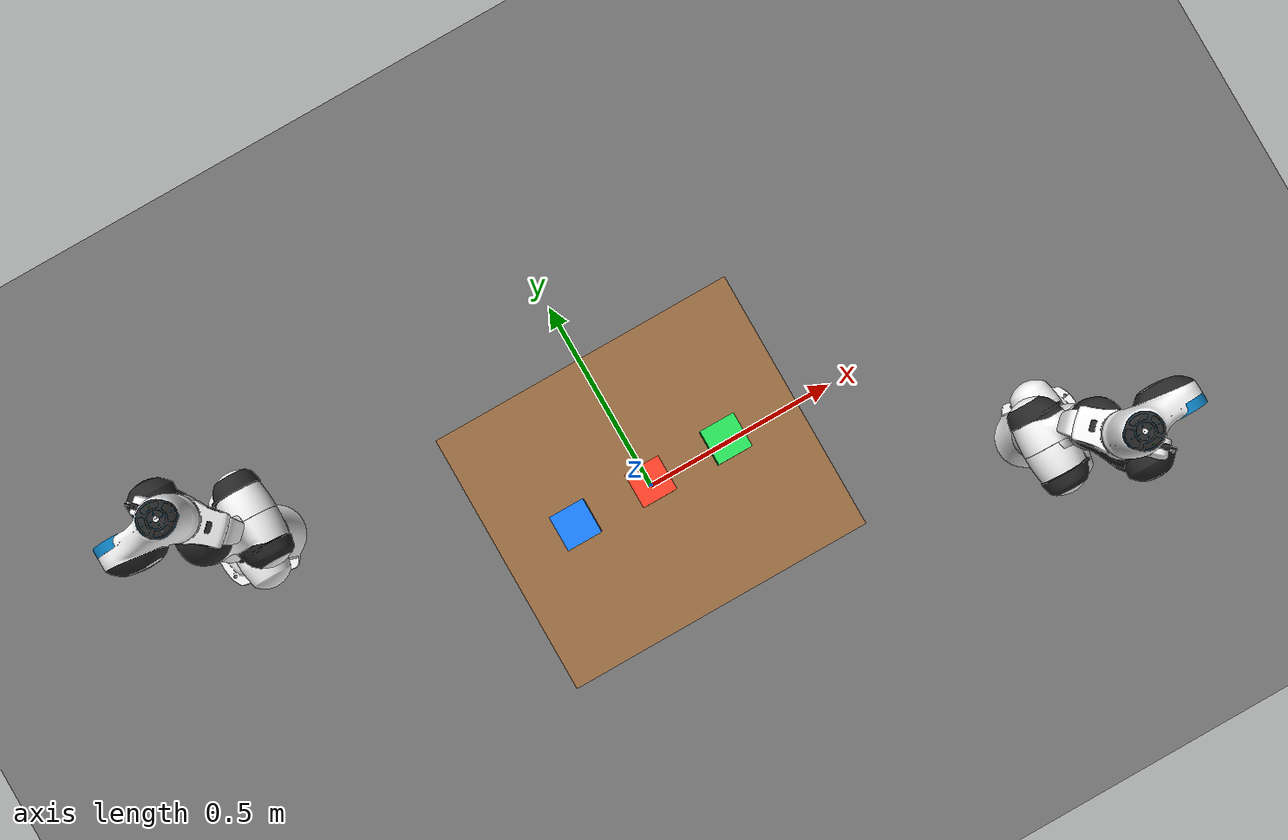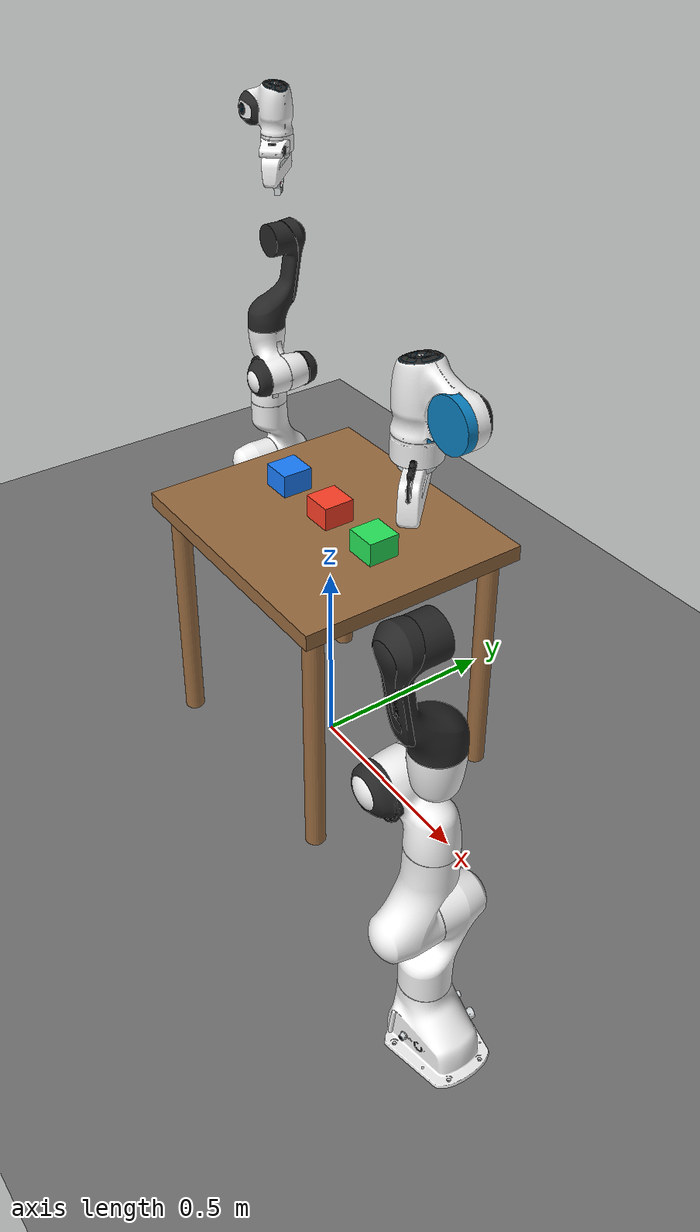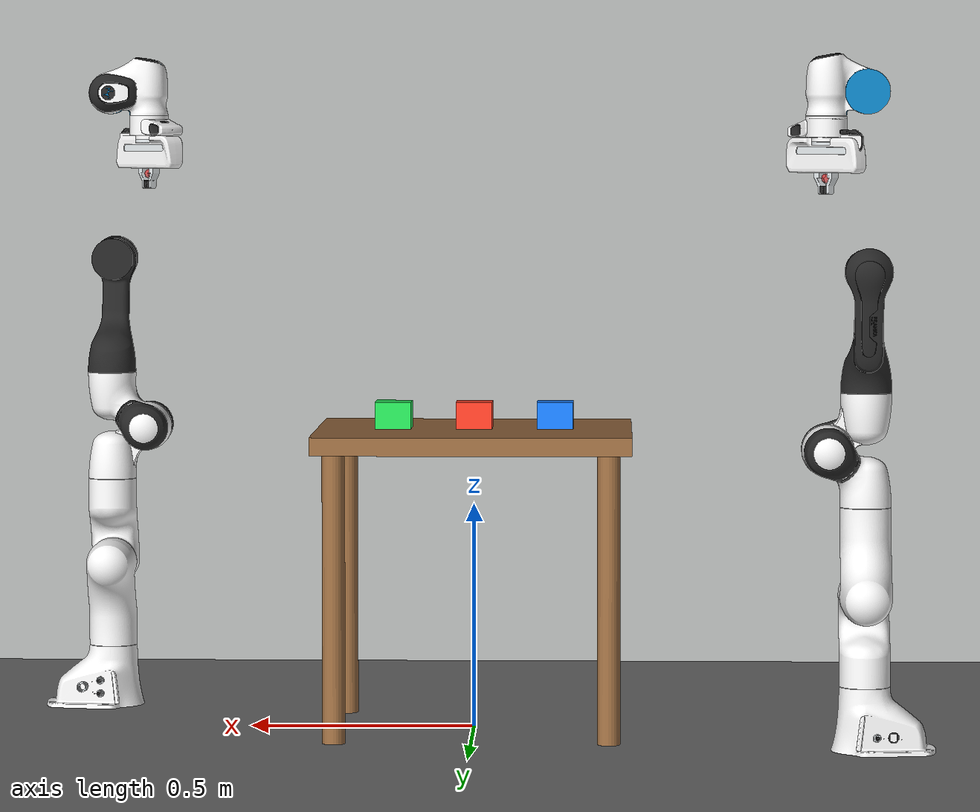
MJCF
<mujoco model="dual arm v5">
  <compiler angle="radian" meshdir="../../vendor/mujoco_menagerie/franka_emika_panda/assets" autolimits="true"/>
  <option timestep="0.002" integrator="implicitfast">
    <flag eulerdamp="disable"/>
  </option>
  <visual>
    <global offwidth="1920" offheight="1080"/>
    <headlight diffuse="0.5 0.5 0.5" ambient="0.3 0.3 0.3"/>
  </visual>
  <default>
    <default class="panda">
      <material specular="0.5" shininess="0.25"/>
      <joint armature="0.1" damping="1" axis="0 0 1" range="-2.8973 2.8973"/>
      <general dyntype="none" biastype="affine" ctrlrange="-2.8973 2.8973" forcerange="-87 87"/>
      <default class="finger">
        <joint axis="0 1 0" type="slide" range="0 0.04"/>
      </default>
      <default class="visual">
        <geom type="mesh" contype="0" conaffinity="0" group="2"/>
      </default>
      <default class="collision">
        <geom type="mesh" group="3"/>
      </default>
    </default>
  </default>
  <asset>
    <texture type="skybox" builtin="gradient" rgb1="0.12 0.2 0.35" rgb2="0.02 0.02 0.06" width="512" height="3072"/>
    <texture type="2d" name="grid" builtin="checker" rgb1=".55 .55 .55" rgb2=".35 .35 .35" width="512" height="512"/>
    <material name="grid_mat" texture="grid" texrepeat="12 12" reflectance="0.12"/>
    <material class="panda" name="white" rgba="0.95 0.95 0.95 1"/>
    <material class="panda" name="off_white" rgba="0.85 0.87 0.88 1"/>
    <material class="panda" name="black" rgba="0.15 0.15 0.15 1"/>
    <material class="panda" name="green" rgba="0 0.8 0 1"/>
    <material class="panda" name="light_blue" rgba="0.04 0.5 0.75 1"/>
    <!-- 太空舱模块 - 更大更醒目 -->
    <material name="mod_blue" rgba="0.1 0.5 1.0 1" specular="0.6" shininess="0.5"/>
    <material name="mod_red" rgba="1.0 0.25 0.15 1" specular="0.6" shininess="0.5"/>
    <material name="mod_green" rgba="0.15 0.9 0.35 1" specular="0.6" shininess="0.5"/>
    <material name="table_mat" rgba="0.6 0.42 0.25 1" specular="0.5" shininess="0.3" reflectance="0.1"/>
    <mesh name="link0_c" file="link0.stl"/><mesh name="link1_c" file="link1.stl"/>
    <mesh name="link2_c" file="link2.stl"/><mesh name="link3_c" file="link3.stl"/>
    <mesh name="link4_c" file="link4.stl"/>
    <mesh name="link5_c0" file="link5_collision_0.obj"/>
    <mesh name="link5_c1" file="link5_collision_1.obj"/>
    <mesh name="link5_c2" file="link5_collision_2.obj"/>
    <mesh name="link6_c" file="link6.stl"/><mesh name="link7_c" file="link7.stl"/>
    <mesh name="hand_c" file="hand.stl"/>
    <mesh file="link0_0.obj"/><mesh file="link0_1.obj"/><mesh file="link0_2.obj"/>
    <mesh file="link0_3.obj"/><mesh file="link0_4.obj"/><mesh file="link0_5.obj"/>
    <mesh file="link0_7.obj"/><mesh file="link0_8.obj"/><mesh file="link0_9.obj"/>
    <mesh file="link0_10.obj"/><mesh file="link0_11.obj"/>
    <mesh file="link1.obj"/><mesh file="link2.obj"/>
    <mesh file="link3_0.obj"/><mesh file="link3_1.obj"/><mesh file="link3_2.obj"/><mesh file="link3_3.obj"/>
    <mesh file="link4_0.obj"/><mesh file="link4_1.obj"/><mesh file="link4_2.obj"/><mesh file="link4_3.obj"/>
    <mesh file="link5_0.obj"/><mesh file="link5_1.obj"/><mesh file="link5_2.obj"/>
    <mesh file="link6_0.obj"/><mesh file="link6_1.obj"/><mesh file="link6_2.obj"/>
    <mesh file="link6_3.obj"/><mesh file="link6_4.obj"/><mesh file="link6_5.obj"/>
    <mesh file="link6_6.obj"/><mesh file="link6_7.obj"/><mesh file="link6_8.obj"/>
    <mesh file="link6_9.obj"/><mesh file="link6_10.obj"/><mesh file="link6_11.obj"/>
    <mesh file="link6_12.obj"/><mesh file="link6_13.obj"/><mesh file="link6_14.obj"/>
    <mesh file="link6_15.obj"/><mesh file="link6_16.obj"/>
    <mesh file="link7_0.obj"/><mesh file="link7_1.obj"/><mesh file="link7_2.obj"/>
    <mesh file="link7_3.obj"/><mesh file="link7_4.obj"/><mesh file="link7_5.obj"/>
    <mesh file="link7_6.obj"/><mesh file="link7_7.obj"/>
    <mesh file="hand_0.obj"/><mesh file="hand_1.obj"/><mesh file="hand_2.obj"/>
    <mesh file="hand_3.obj"/><mesh file="hand_4.obj"/>
    <mesh file="finger_0.obj"/><mesh file="finger_1.obj"/>
  </asset>

  <worldbody>
    <light pos="0.5 0.8 3" dir="-0.2 -0.3 -1" diffuse=".8 .8 .8" specular=".3 .3 .3"/>
    <light pos="-0.8 0.5 2" dir="0.3 -0.2 -1" diffuse=".4 .4 .4"/>
    <light pos="0 -1.5 2" dir="0 0.8 -1" diffuse=".3 .3 .3"/>
    <geom name="floor" size="4 4 0.1" type="plane" material="grid_mat"/>
    <geom name="table_top" type="box" pos="0 0 0.65" size="0.35 0.3 0.02"
          material="table_mat" contype="1" conaffinity="1"/>
    <geom name="table_leg1" type="cylinder" pos="-0.3 -0.25 0.32" size="0.025 0.33"
          material="table_mat" contype="1" conaffinity="1"/>
    <geom name="table_leg2" type="cylinder" pos="0.3 -0.25 0.32" size="0.025 0.33"
          material="table_mat" contype="1" conaffinity="1"/>
    <geom name="table_leg3" type="cylinder" pos="-0.3 0.25 0.32" size="0.025 0.33"
          material="table_mat" contype="1" conaffinity="1"/>
    <geom name="table_leg4" type="cylinder" pos="0.3 0.25 0.32" size="0.025 0.33"
          material="table_mat" contype="1" conaffinity="1"/>

    <!-- 太空舱模块 - 中间位置 z=0.7 -->
    <body name="module_a" pos="-0.18 0 0.7">
      <freejoint name="module_a_free"/>
      <geom type="box" size="0.04 0.04 0.03" material="mod_blue"/>
    </body>
    <body name="module_b" pos="0 0 0.7">
      <freejoint name="module_b_free"/>
      <geom type="box" size="0.04 0.04 0.03" material="mod_red"/>
    </body>
    <body name="module_c" pos="0.18 0 0.7">
      <freejoint name="module_c_free"/>
      <geom type="box" size="0.04 0.04 0.03" material="mod_green"/>
    </body>

    <!-- Left Arm - 距离拉开 x=-0.5 -->
    <body name="base_L" pos="-0.85 0.35 0">
      <body name="link0_L" childclass="panda">
        <inertial mass="0.629769" pos="-0.041018 -0.00014 0.049974" fullinertia="0.00315 0.00388 0.004285 8.2904e-7 0.00015 8.2299e-6"/>
        <geom mesh="link0_0" material="off_white" class="visual"/><geom mesh="link0_1" material="black" class="visual"/>
        <geom mesh="link0_2" material="off_white" class="visual"/><geom mesh="link0_3" material="black" class="visual"/>
        <geom mesh="link0_4" material="off_white" class="visual"/><geom mesh="link0_5" material="black" class="visual"/>
        <geom mesh="link0_7" material="white" class="visual"/><geom mesh="link0_8" material="white" class="visual"/>
        <geom mesh="link0_9" material="black" class="visual"/><geom mesh="link0_10" material="off_white" class="visual"/>
        <geom mesh="link0_11" material="white" class="visual"/><geom mesh="link0_c" class="collision"/>
        <body name="link1_L" pos="0 0 0.333">
          <inertial mass="4.970684" pos="0.003875 0.002081 -0.04762" fullinertia="0.70337 0.70661 0.0091170 -0.00013900 0.0067720 0.019169"/>
          <joint name="joint1_L"/>
          <geom material="white" mesh="link1" class="visual"/><geom mesh="link1_c" class="collision"/>
          <body name="link2_L" quat="1 -1 0 0">
            <inertial mass="0.646926" pos="-0.003141 -0.02872 0.003495" fullinertia="0.0079620 2.8110e-2 2.5995e-2 -3.925e-3 1.0254e-2 7.04e-4"/>
            <joint name="joint2_L" range="-1.7628 1.7628"/>
            <geom material="white" mesh="link2" class="visual"/><geom mesh="link2_c" class="collision"/>
            <body name="link3_L" pos="0 -0.316 0" quat="1 1 0 0">
              <joint name="joint3_L"/>
              <inertial mass="3.228604" pos="2.7518e-2 3.9252e-2 -6.6502e-2" fullinertia="3.7242e-2 3.6155e-2 1.083e-2 -4.761e-3 -1.1396e-2 -1.2805e-2"/>
              <geom mesh="link3_0" material="white" class="visual"/><geom mesh="link3_1" material="white" class="visual"/>
              <geom mesh="link3_2" material="white" class="visual"/><geom mesh="link3_3" material="black" class="visual"/>
              <geom mesh="link3_c" class="collision"/>
              <body name="link4_L" pos="0.0825 0 0" quat="1 1 0 0">
                <inertial mass="3.587895" pos="-5.317e-2 1.04419e-1 2.7454e-2" fullinertia="2.5853e-2 1.9552e-2 2.8323e-2 7.796e-3 -1.332e-3 8.641e-3"/>
                <joint name="joint4_L" range="-3.0718 -0.0698"/>
                <geom mesh="link4_0" material="white" class="visual"/><geom mesh="link4_1" material="white" class="visual"/>
                <geom mesh="link4_2" material="black" class="visual"/><geom mesh="link4_3" material="white" class="visual"/>
                <geom mesh="link4_c" class="collision"/>
                <body name="link5_L" pos="-0.0825 0.384 0" quat="1 -1 0 0">
                  <inertial mass="1.225946" pos="-1.1953e-2 4.1065e-2 -3.8437e-2" fullinertia="3.5549e-2 2.9474e-2 8.627e-3 -2.117e-3 -4.037e-3 2.29e-4"/>
                  <joint name="joint5_L"/>
                  <geom mesh="link5_0" material="black" class="visual"/><geom mesh="link5_1" material="black" class="visual"/>
                  <geom mesh="link5_2" material="black" class="visual"/>
                  <geom mesh="link5_c0" class="collision"/><geom mesh="link5_c1" class="collision"/><geom mesh="link5_c2" class="collision"/>
                  <body name="link6_L" pos="0 0 0.384" quat="1 1 0 0">
                    <inertial mass="1.66656" pos="-1.1953e-2 4.1065e-2 -3.8437e-2" fullinertia="3.5549e-2 2.9474e-2 8.627e-3 -2.117e-3 -4.037e-3 2.29e-4"/>
                    <joint name="joint6_L"/>
                    <geom mesh="link6_0" material="light_blue" class="visual"/><geom mesh="link6_1" material="light_blue" class="visual"/>
                    <geom mesh="link6_2" material="light_blue" class="visual"/><geom mesh="link6_3" material="light_blue" class="visual"/>
                    <geom mesh="link6_4" material="light_blue" class="visual"/><geom mesh="link6_5" material="light_blue" class="visual"/>
                    <geom mesh="link6_6" material="light_blue" class="visual"/><geom mesh="link6_7" material="light_blue" class="visual"/>
                    <geom mesh="link6_8" material="light_blue" class="visual"/><geom mesh="link6_9" material="black" class="visual"/>
                    <geom mesh="link6_10" material="black" class="visual"/><geom mesh="link6_11" material="white" class="visual"/>
                    <geom mesh="link6_12" material="green" class="visual"/><geom mesh="link6_13" material="white" class="visual"/>
                    <geom mesh="link6_14" material="black" class="visual"/><geom mesh="link6_15" material="black" class="visual"/>
                    <geom mesh="link6_16" material="white" class="visual"/><geom mesh="link6_c" class="collision"/>
                    <body name="link7_L" pos="0.088 0 0" quat="1 1 0 0">
                      <inertial mass="7.35522e-01" pos="1.0517e-2 -4.252e-3 6.1597e-2" fullinertia="1.2516e-2 1.0027e-2 4.815e-3 -4.28e-4 -1.196e-3 -7.41e-4"/>
                      <joint name="joint7_L"/>
                      <geom mesh="link7_0" material="white" class="visual"/><geom mesh="link7_1" material="black" class="visual"/>
                      <geom mesh="link7_2" material="black" class="visual"/><geom mesh="link7_3" material="black" class="visual"/>
                      <geom mesh="link7_4" material="black" class="visual"/><geom mesh="link7_5" material="black" class="visual"/>
                      <geom mesh="link7_6" material="black" class="visual"/><geom mesh="link7_7" material="white" class="visual"/>
                      <geom mesh="link7_c" class="collision"/>
                      <body name="hand_L" pos="0 0 0.107" quat="0.9238795 0 0 -0.3826834">
                        <inertial mass="0.73" pos="-0.01 0 0.03" diaginertia="0.001 0.0025 0.0017"/>
                        <geom mesh="hand_0" material="off_white" class="visual"/><geom mesh="hand_1" material="black" class="visual"/>
                        <geom mesh="hand_2" material="black" class="visual"/><geom mesh="hand_3" material="white" class="visual"/>
                        <geom mesh="hand_4" material="off_white" class="visual"/><geom mesh="hand_c" class="collision"/>
                        <body name="left_finger_L" pos="0 0 0.0584">
                          <inertial mass="0.015" pos="0 0 0" diaginertia="2.375e-6 2.375e-6 7.5e-7"/>
                          <joint name="finger_joint1_L" class="finger"/>
                          <site name="touch_site_L1" pos="0 0 0.02" size="0.01" rgba="1 0 0 0.5"/>
                          <geom mesh="finger_0" material="off_white" class="visual"/><geom mesh="finger_1" material="black" class="visual"/>
                          <geom mesh="finger_0" class="collision"/>
                        </body>
                        <body name="right_finger_L" pos="0 0 0.0584" quat="0 0 0 1">
                          <inertial mass="0.015" pos="0 0 0" diaginertia="2.375e-6 2.375e-6 7.5e-7"/>
                          <joint name="finger_joint2_L" class="finger"/>
                          <site name="touch_site_L2" pos="0 0 0.02" size="0.01" rgba="1 0 0 0.5"/>
                          <geom mesh="finger_0" material="off_white" class="visual"/><geom mesh="finger_1" material="black" class="visual"/>
                          <geom mesh="finger_0" class="collision"/>
                        </body>
                      </body>
                    </body>
                  </body>
                </body>
              </body>
            </body>
          </body>
        </body>
      </body>
    </body>

    <!-- Right Arm - x=0.5 对称 -->
    <body name="base_R" pos="0.85 -0.35 0" euler="0 0 3.14159">
      <body name="link0_R" childclass="panda">
        <inertial mass="0.629769" pos="-0.041018 -0.00014 0.049974" fullinertia="0.00315 0.00388 0.004285 8.2904e-7 0.00015 8.2299e-6"/>
        <geom mesh="link0_0" material="off_white" class="visual"/><geom mesh="link0_1" material="black" class="visual"/>
        <geom mesh="link0_2" material="off_white" class="visual"/><geom mesh="link0_3" material="black" class="visual"/>
        <geom mesh="link0_4" material="off_white" class="visual"/><geom mesh="link0_5" material="black" class="visual"/>
        <geom mesh="link0_7" material="white" class="visual"/><geom mesh="link0_8" material="white" class="visual"/>
        <geom mesh="link0_9" material="black" class="visual"/><geom mesh="link0_10" material="off_white" class="visual"/>
        <geom mesh="link0_11" material="white" class="visual"/><geom mesh="link0_c" class="collision"/>
        <body name="link1_R" pos="0 0 0.333">
          <inertial mass="4.970684" pos="0.003875 0.002081 -0.04762" fullinertia="0.70337 0.70661 0.0091170 -0.00013900 0.0067720 0.019169"/>
          <joint name="joint1_R"/>
          <geom material="white" mesh="link1" class="visual"/><geom mesh="link1_c" class="collision"/>
          <body name="link2_R" quat="1 -1 0 0">
            <inertial mass="0.646926" pos="-0.003141 -0.02872 0.003495" fullinertia="0.0079620 2.8110e-2 2.5995e-2 -3.925e-3 1.0254e-2 7.04e-4"/>
            <joint name="joint2_R" range="-1.7628 1.7628"/>
            <geom material="white" mesh="link2" class="visual"/><geom mesh="link2_c" class="collision"/>
            <body name="link3_R" pos="0 -0.316 0" quat="1 1 0 0">
              <joint name="joint3_R"/>
              <inertial mass="3.228604" pos="2.7518e-2 3.9252e-2 -6.6502e-2" fullinertia="3.7242e-2 3.6155e-2 1.083e-2 -4.761e-3 -1.1396e-2 -1.2805e-2"/>
              <geom mesh="link3_0" material="white" class="visual"/><geom mesh="link3_1" material="white" class="visual"/>
              <geom mesh="link3_2" material="white" class="visual"/><geom mesh="link3_3" material="black" class="visual"/>
              <geom mesh="link3_c" class="collision"/>
              <body name="link4_R" pos="0.0825 0 0" quat="1 1 0 0">
                <inertial mass="3.587895" pos="-5.317e-2 1.04419e-1 2.7454e-2" fullinertia="2.5853e-2 1.9552e-2 2.8323e-2 7.796e-3 -1.332e-3 8.641e-3"/>
                <joint name="joint4_R" range="-3.0718 -0.0698"/>
                <geom mesh="link4_0" material="white" class="visual"/><geom mesh="link4_1" material="white" class="visual"/>
                <geom mesh="link4_2" material="black" class="visual"/><geom mesh="link4_3" material="white" class="visual"/>
                <geom mesh="link4_c" class="collision"/>
                <body name="link5_R" pos="-0.0825 0.384 0" quat="1 -1 0 0">
                  <inertial mass="1.225946" pos="-1.1953e-2 4.1065e-2 -3.8437e-2" fullinertia="3.5549e-2 2.9474e-2 8.627e-3 -2.117e-3 -4.037e-3 2.29e-4"/>
                  <joint name="joint5_R"/>
                  <geom mesh="link5_0" material="black" class="visual"/><geom mesh="link5_1" material="black" class="visual"/>
                  <geom mesh="link5_2" material="black" class="visual"/>
                  <geom mesh="link5_c0" class="collision"/><geom mesh="link5_c1" class="collision"/><geom mesh="link5_c2" class="collision"/>
                  <body name="link6_R" pos="0 0 0.384" quat="1 1 0 0">
                    <inertial mass="1.66656" pos="-1.1953e-2 4.1065e-2 -3.8437e-2" fullinertia="3.5549e-2 2.9474e-2 8.627e-3 -2.117e-3 -4.037e-3 2.29e-4"/>
                    <joint name="joint6_R"/>
                    <geom mesh="link6_0" material="light_blue" class="visual"/><geom mesh="link6_1" material="light_blue" class="visual"/>
                    <geom mesh="link6_2" material="light_blue" class="visual"/><geom mesh="link6_3" material="light_blue" class="visual"/>
                    <geom mesh="link6_4" material="light_blue" class="visual"/><geom mesh="link6_5" material="light_blue" class="visual"/>
                    <geom mesh="link6_6" material="light_blue" class="visual"/><geom mesh="link6_7" material="light_blue" class="visual"/>
                    <geom mesh="link6_8" material="light_blue" class="visual"/><geom mesh="link6_9" material="black" class="visual"/>
                    <geom mesh="link6_10" material="black" class="visual"/><geom mesh="link6_11" material="white" class="visual"/>
                    <geom mesh="link6_12" material="green" class="visual"/><geom mesh="link6_13" material="white" class="visual"/>
                    <geom mesh="link6_14" material="black" class="visual"/><geom mesh="link6_15" material="black" class="visual"/>
                    <geom mesh="link6_16" material="white" class="visual"/><geom mesh="link6_c" class="collision"/>
                    <body name="link7_R" pos="0.088 0 0" quat="1 1 0 0">
                      <inertial mass="7.35522e-01" pos="1.0517e-2 -4.252e-3 6.1597e-2" fullinertia="1.2516e-2 1.0027e-2 4.815e-3 -4.28e-4 -1.196e-3 -7.41e-4"/>
                      <joint name="joint7_R"/>
                      <geom mesh="link7_0" material="white" class="visual"/><geom mesh="link7_1" material="black" class="visual"/>
                      <geom mesh="link7_2" material="black" class="visual"/><geom mesh="link7_3" material="black" class="visual"/>
                      <geom mesh="link7_4" material="black" class="visual"/><geom mesh="link7_5" material="black" class="visual"/>
                      <geom mesh="link7_6" material="black" class="visual"/><geom mesh="link7_7" material="white" class="visual"/>
                      <geom mesh="link7_c" class="collision"/>
                      <body name="hand_R" pos="0 0 0.107" quat="0.9238795 0 0 -0.3826834">
                        <inertial mass="0.73" pos="-0.01 0 0.03" diaginertia="0.001 0.0025 0.0017"/>
                        <geom mesh="hand_0" material="off_white" class="visual"/><geom mesh="hand_1" material="black" class="visual"/>
                        <geom mesh="hand_2" material="black" class="visual"/><geom mesh="hand_3" material="white" class="visual"/>
                        <geom mesh="hand_4" material="off_white" class="visual"/><geom mesh="hand_c" class="collision"/>
                        <body name="left_finger_R" pos="0 0 0.0584">
                          <inertial mass="0.015" pos="0 0 0" diaginertia="2.375e-6 2.375e-6 7.5e-7"/>
                          <joint name="finger_joint1_R" class="finger"/>
                          <site name="touch_site_R1" pos="0 0 0.02" size="0.01" rgba="1 0 0 0.5"/>
                          <geom mesh="finger_0" material="off_white" class="visual"/><geom mesh="finger_1" material="black" class="visual"/>
                          <geom mesh="finger_0" class="collision"/>
                        </body>
                        <body name="right_finger_R" pos="0 0 0.0584" quat="0 0 0 1">
                          <inertial mass="0.015" pos="0 0 0" diaginertia="2.375e-6 2.375e-6 7.5e-7"/>
                          <joint name="finger_joint2_R" class="finger"/>
                          <site name="touch_site_R2" pos="0 0 0.02" size="0.01" rgba="1 0 0 0.5"/>
                          <geom mesh="finger_0" material="off_white" class="visual"/><geom mesh="finger_1" material="black" class="visual"/>
                          <geom mesh="finger_0" class="collision"/>
                        </body>
                      </body>
                    </body>
                  </body>
                </body>
              </body>
            </body>
          </body>
        </body>
      </body>
    </body>

    <!-- 相机：更远更广，确保都看得到 -->
    <camera name="cam_main" pos="0 -2.0 1.3" xyaxes="1 0 0 0 0.55 0.84"/>
    <camera name="cam_top" pos="0 0 3.0" xyaxes="1 0 0 0 1 0"/>
    <camera name="cam_side" pos="0 -2.5 1.5" xyaxes="1 0 0 0 0.5 0.87"/>
    <camera name="cam_close_L" pos="-0.8 -1.2 1.0" xyaxes="0.8 0.6 0 0 0 1"/>
    <camera name="cam_close_R" pos="0.8 -1.2 1.0" xyaxes="-0.8 0.6 0 0 0 1"/>
  </worldbody>

  <tendon>
    <fixed name="split_L"><joint joint="finger_joint1_L" coef="0.5"/><joint joint="finger_joint2_L" coef="0.5"/></fixed>
    <fixed name="split_R"><joint joint="finger_joint1_R" coef="0.5"/><joint joint="finger_joint2_R" coef="0.5"/></fixed>
  </tendon>
  <equality>
    <joint joint1="finger_joint1_L" joint2="finger_joint2_L" solimp="0.95 0.99 0.001" solref="0.005 1"/>
    <joint joint1="finger_joint1_R" joint2="finger_joint2_R" solimp="0.95 0.99 0.001" solref="0.005 1"/>
  </equality>
  <actuator>
    <general class="panda" name="a1L" joint="joint1_L" gainprm="4500" biasprm="0 -4500 -450"/>
    <general class="panda" name="a2L" joint="joint2_L" gainprm="4500" biasprm="0 -4500 -450" ctrlrange="-1.7628 1.7628"/>
    <general class="panda" name="a3L" joint="joint3_L" gainprm="3500" biasprm="0 -3500 -350"/>
    <general class="panda" name="a4L" joint="joint4_L" gainprm="3500" biasprm="0 -3500 -350" ctrlrange="-3.0718 -0.0698"/>
    <general class="panda" name="a5L" joint="joint5_L" gainprm="2000" biasprm="0 -2000 -200" forcerange="-12 12"/>
    <general class="panda" name="a6L" joint="joint6_L" gainprm="2000" biasprm="0 -2000 -200" forcerange="-12 12" ctrlrange="-0.0175 3.7525"/>
    <general class="panda" name="a7L" joint="joint7_L" gainprm="2000" biasprm="0 -2000 -200" forcerange="-12 12"/>
    <general class="panda" name="a8L" tendon="split_L" forcerange="-100 100" ctrlrange="0 255" gainprm="0.01568627451 0 0" biasprm="0 -100 -10"/>
    <general class="panda" name="a1R" joint="joint1_R" gainprm="4500" biasprm="0 -4500 -450"/>
    <general class="panda" name="a2R" joint="joint2_R" gainprm="4500" biasprm="0 -4500 -450" ctrlrange="-1.7628 1.7628"/>
    <general class="panda" name="a3R" joint="joint3_R" gainprm="3500" biasprm="0 -3500 -350"/>
    <general class="panda" name="a4R" joint="joint4_R" gainprm="3500" biasprm="0 -3500 -350" ctrlrange="-3.0718 -0.0698"/>
    <general class="panda" name="a5R" joint="joint5_R" gainprm="2000" biasprm="0 -2000 -200" forcerange="-12 12"/>
    <general class="panda" name="a6R" joint="joint6_R" gainprm="2000" biasprm="0 -2000 -200" forcerange="-12 12" ctrlrange="-0.0175 3.7525"/>
    <general class="panda" name="a7R" joint="joint7_R" gainprm="2000" biasprm="0 -2000 -200" forcerange="-12 12"/>
    <general class="panda" name="a8R" tendon="split_R" forcerange="-100 100" ctrlrange="0 255" gainprm="0.01568627451 0 0" biasprm="0 -100 -10"/>
  </actuator>
  <sensor>
    <touch name="touch_L_f1" site="touch_site_L1"/>
    <touch name="touch_L_f2" site="touch_site_L2"/>
    <touch name="touch_R_f1" site="touch_site_R1"/>
    <touch name="touch_R_f2" site="touch_site_R2"/>
  </sensor>
</mujoco>
